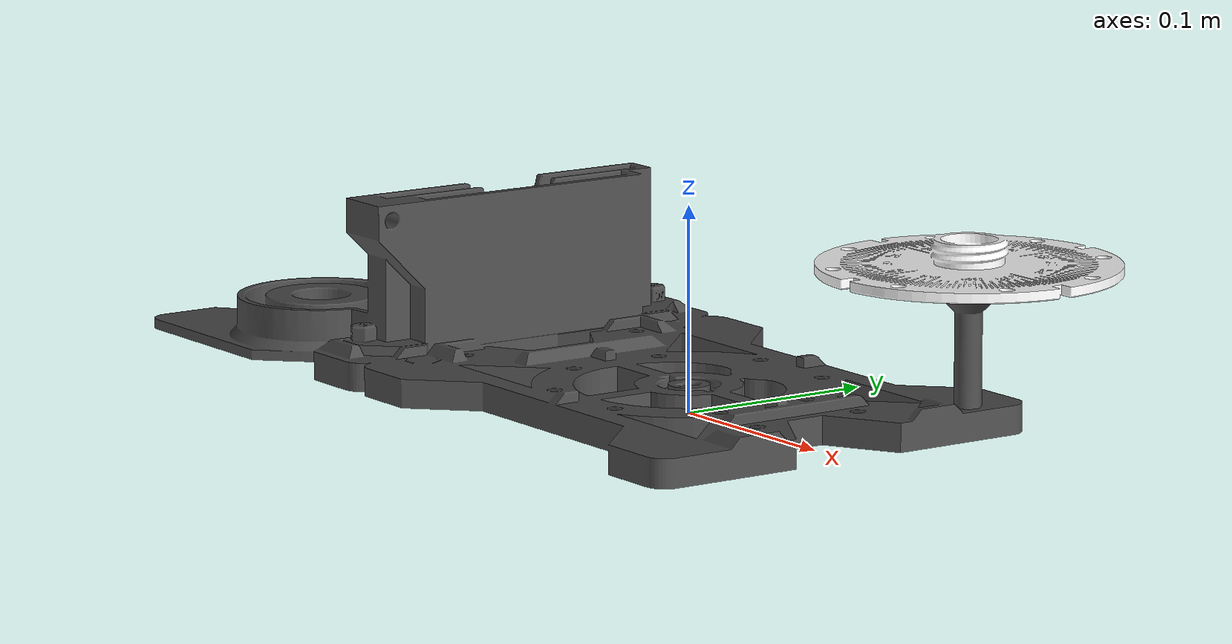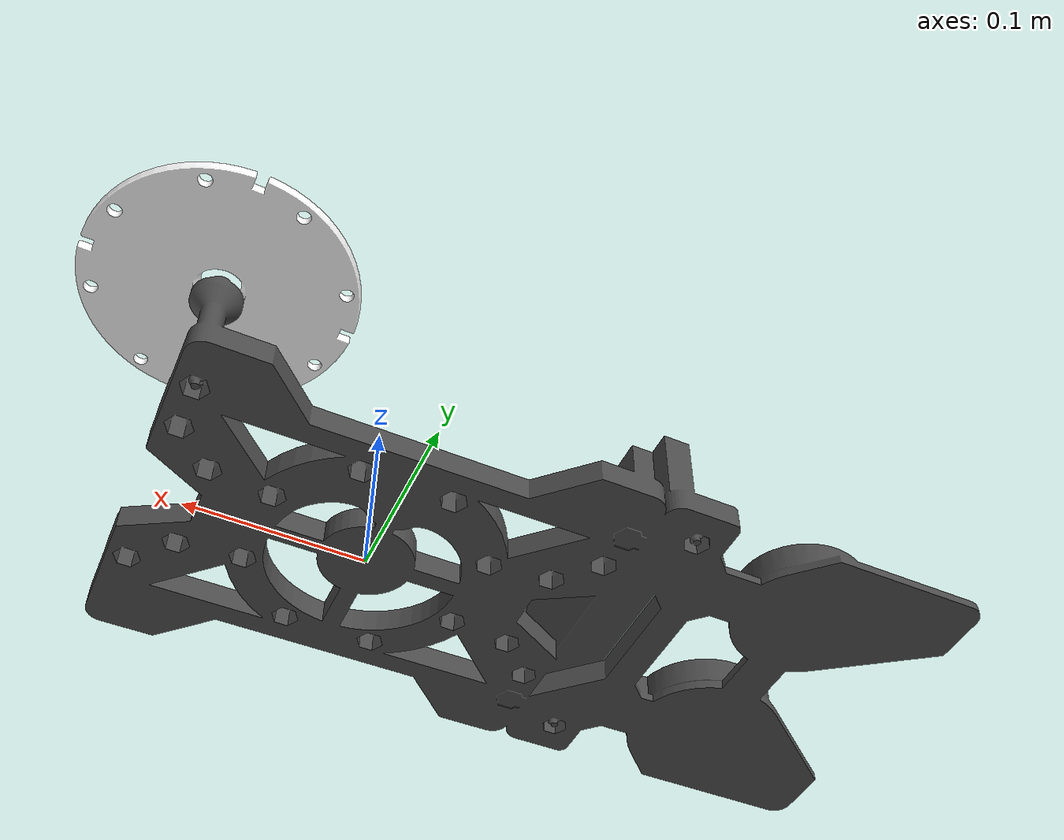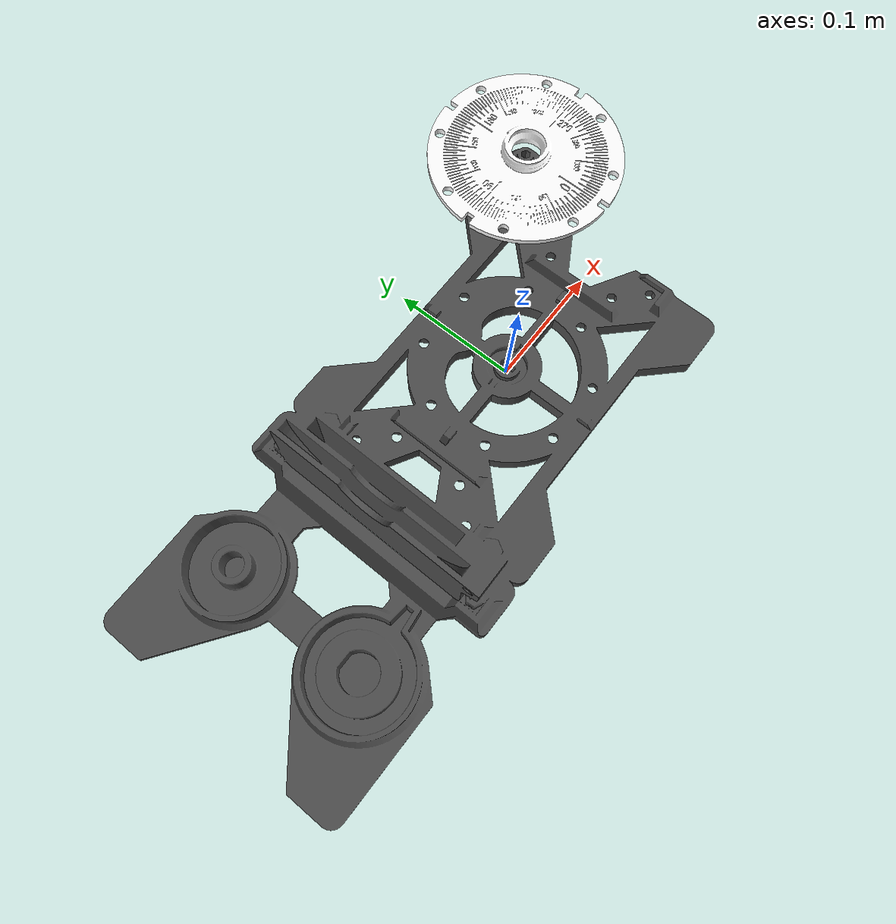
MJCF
<mujoco model="G3_Disk">

  <asset>
    <material name="object_material" rgba="1 1 1 1" shininess="0.3"/>

    <mesh name="g9101112_base_plate_visual" file="g9101112_base_plate_visual.stl" scale="1 1 1"/>
    <mesh name="g_plate_collision_part1" file="g_plate_collision_part1.stl" scale="1 1 1"/>
    <mesh name="g_plate_collision_part2" file="g_plate_collision_part2.stl" scale="1 1 1"/>
    <mesh name="g_plate_collision_part3" file="g_plate_collision_part3.stl" scale="1 1 1"/>
    <mesh name="g1112_bracket_collision_part1" file="g1112_bracket_collision_part1.stl" scale="1 1 1"/>
    <mesh name="g1112_bracket_collision_part2" file="g1112_bracket_collision_part2.stl" scale="1 1 1"/>
    <mesh name="g1112_bracket_collision_part3" file="g1112_bracket_collision_part3.stl" scale="1 1 1"/>
    <mesh name="g1112_bracket_collision_part4" file="g1112_bracket_collision_part4.stl" scale="1 1 1"/>
    <mesh name="g111213_pick_holder_collision" file="g111213_pick_holder_collision.stl" scale="1 1 1"/>

    <mesh name="g11_disk_visual" file="g11_disk_visual.stl" scale="1 1 1"/>
    <mesh name="g1112_disk_collision" file="g1112_disk_collision.stl" scale="1 1 1"/>

  </asset>

  <default>
    <default class="visual">
      <geom contype="0" conaffinity="0" group="2"/>
    </default>
    <default class="collision">
      <geom group="3" solimp="0.5 0.99 0.0001" solref="0.005 1"/>
    </default>
  </default>

  <worldbody>
    <body name="base_plate" pos="0 0 0">
      <geom name="g9101112_base_plate_visual" type="mesh" mesh="g9101112_base_plate_visual" rgba="0.3 0.3 0.3 1" mass="0" class="visual"/>
      <geom name="g_plate_collision_part1" type="mesh" mesh="g_plate_collision_part1" class="collision" density="248"/>
      <geom name="g_plate_collision_part2" type="mesh" mesh="g_plate_collision_part2" class="collision" density="248"/>
      <geom size="0.1265 0.1063 0.007"  pos="0 0 0.007" type="box" density="248" class="collision"/>
      <geom name="g1112_bracket_collision_part1" type="mesh" mesh="g1112_bracket_collision_part1" class="collision" density="248"/>
      <geom name="g1112_bracket_collision_part2" type="mesh" mesh="g1112_bracket_collision_part2" class="collision" density="248"/>
      <geom name="g1112_bracket_collision_part3" type="mesh" mesh="g1112_bracket_collision_part3" class="collision" density="248"/>
      <geom name="g1112_bracket_collision_part4" type="mesh" mesh="g1112_bracket_collision_part4" class="collision" density="248"/>
      <geom size="0.0134 0.009"  pos="0.1155 0.0773 0.068" type="cylinder" density="248" class="collision" friction="0.5 0.5 0.01"/>
    </body>

    <body name="g11_disk" pos="0 0 0">
      <joint name="g11_free_joint" type="free"/>
      <geom name="g11_disk_visual" type="mesh" mesh="g11_disk_visual" material="object_material" mass="0" class="visual"/>
      <geom size="0.072 0.0025"  pos="0.1155 0.0773 0.0795" type="cylinder" density="248" class="collision" friction="0.5 0.5 0.01"/>
    </body>

  </worldbody>
</mujoco>
